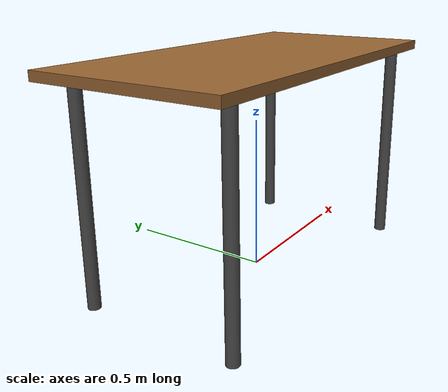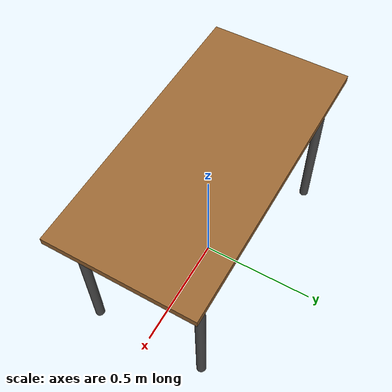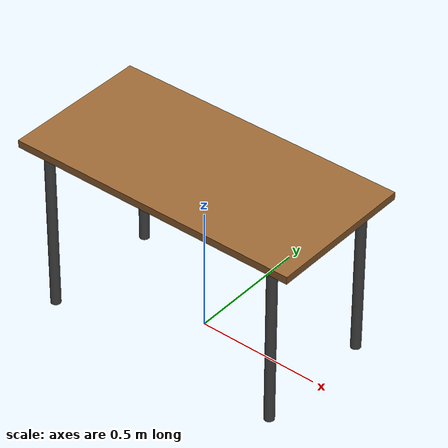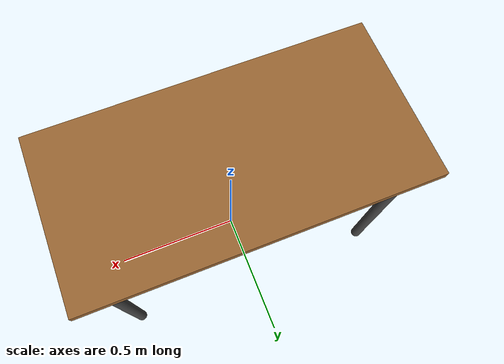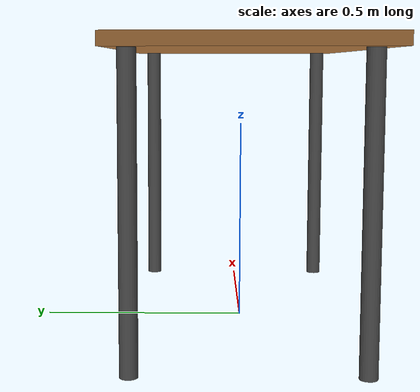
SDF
<?xml version="1.0"?>
<sdf version="1.9">
  <model name="classroom_desk">
    <static>true</static>
    <link name="link">
      <!-- Desktop -->
      <visual name="desktop_visual">
        <pose>0 0 0.7 0 0 0</pose>
        <geometry>
          <box>
            <size>1.2 0.6 0.03</size>
          </box>
        </geometry>
        <material>
          <ambient>0.6 0.4 0.2 1</ambient>
          <diffuse>0.6 0.4 0.2 1</diffuse>
        </material>
      </visual>
      <collision name="desktop_collision">
        <pose>0 0 0.7 0 0 0</pose>
        <geometry>
          <box>
            <size>1.2 0.6 0.03</size>
          </box>
        </geometry>
      </collision>

      <!-- Leg 1 -->
      <visual name="leg1_visual">
        <pose>0.5 0.25 0.35 0 0 0</pose>
        <geometry>
          <cylinder>
            <radius>0.02</radius>
            <length>0.7</length>
          </cylinder>
        </geometry>
        <material>
          <ambient>0.3 0.3 0.3 1</ambient>
          <diffuse>0.3 0.3 0.3 1</diffuse>
        </material>
      </visual>
      <collision name="leg1_collision">
        <pose>0.5 0.25 0.35 0 0 0</pose>
        <geometry>
          <cylinder>
            <radius>0.02</radius>
            <length>0.7</length>
          </cylinder>
        </geometry>
      </collision>

      <!-- Leg 2 -->
      <visual name="leg2_visual">
        <pose>0.5 -0.25 0.35 0 0 0</pose>
        <geometry>
          <cylinder>
            <radius>0.02</radius>
            <length>0.7</length>
          </cylinder>
        </geometry>
        <material>
          <ambient>0.3 0.3 0.3 1</ambient>
          <diffuse>0.3 0.3 0.3 1</diffuse>
        </material>
      </visual>
      <collision name="leg2_collision">
        <pose>0.5 -0.25 0.35 0 0 0</pose>
        <geometry>
          <cylinder>
            <radius>0.02</radius>
            <length>0.7</length>
          </cylinder>
        </geometry>
      </collision>

      <!-- Leg 3 -->
      <visual name="leg3_visual">
        <pose>-0.5 0.25 0.35 0 0 0</pose>
        <geometry>
          <cylinder>
            <radius>0.02</radius>
            <length>0.7</length>
          </cylinder>
        </geometry>
        <material>
          <ambient>0.3 0.3 0.3 1</ambient>
          <diffuse>0.3 0.3 0.3 1</diffuse>
        </material>
      </visual>
      <collision name="leg3_collision">
        <pose>-0.5 0.25 0.35 0 0 0</pose>
        <geometry>
          <cylinder>
            <radius>0.02</radius>
            <length>0.7</length>
          </cylinder>
        </geometry>
      </collision>

      <!-- Leg 4 -->
      <visual name="leg4_visual">
        <pose>-0.5 -0.25 0.35 0 0 0</pose>
        <geometry>
          <cylinder>
            <radius>0.02</radius>
            <length>0.7</length>
          </cylinder>
        </geometry>
        <material>
          <ambient>0.3 0.3 0.3 1</ambient>
          <diffuse>0.3 0.3 0.3 1</diffuse>
        </material>
      </visual>
      <collision name="leg4_collision">
        <pose>-0.5 -0.25 0.35 0 0 0</pose>
        <geometry>
          <cylinder>
            <radius>0.02</radius>
            <length>0.7</length>
          </cylinder>
        </geometry>
      </collision>
    </link>
  </model>
</sdf>
